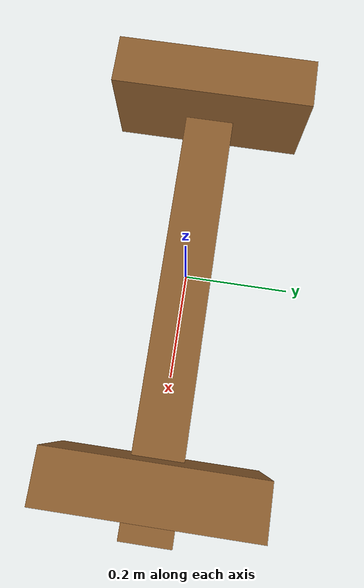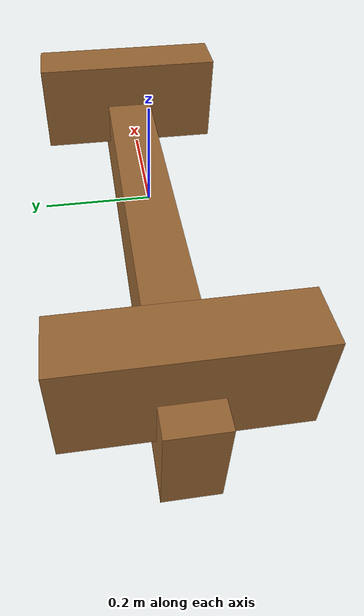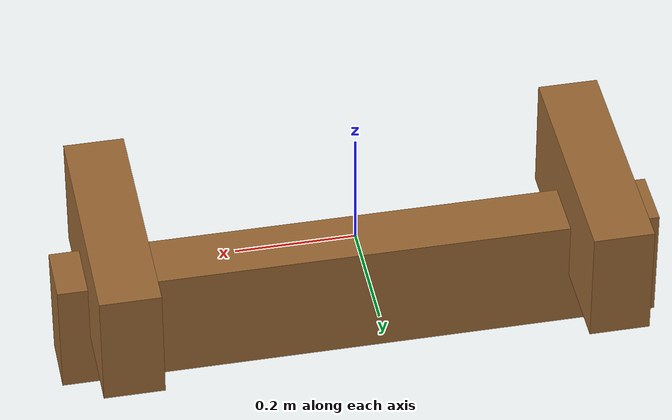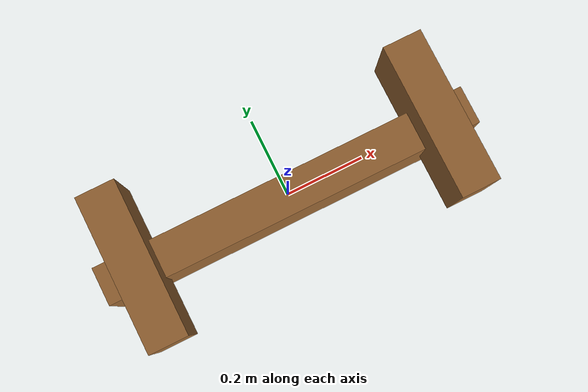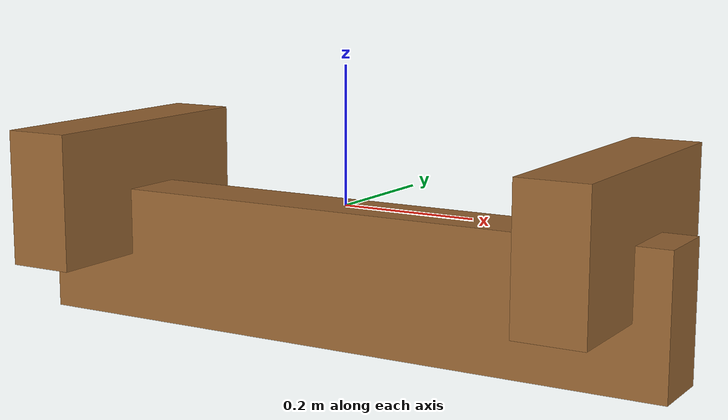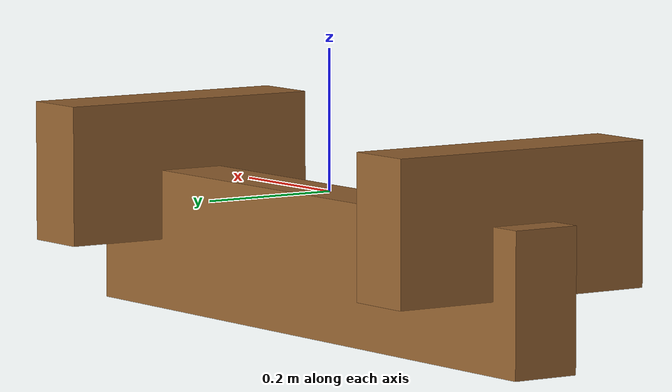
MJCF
<mujoco model="U-shaped Structure">
  <option timestep="0.001" integrator="RK4"/>

  <worldbody>
    <!-- Define the vertical leg on the left -->
    <body name="left_leg" pos="-0.4 0 0">
      <freejoint/>
      <geom type="box" size="0.05 0.2 0.1" rgba="0.6 0.4 0.2 1"/> <!-- size: width, height, depth -->
    </body>

    <!-- Define the vertical leg on the right -->
    <body name="right_leg" pos="0.4 0 0">
      <freejoint/>
      <geom type="box" size="0.05 0.2 0.1" rgba="0.6 0.4 0.2 1"/>
    </body>

    <!-- Define the horizontal base connecting the legs -->
    <body name="base" pos="0 0 -0.1">
      <freejoint/>
      <geom type="box" size="0.5 0.05 0.1" rgba="0.6 0.4 0.2 1"/>
    </body>
  </worldbody>
</mujoco>
